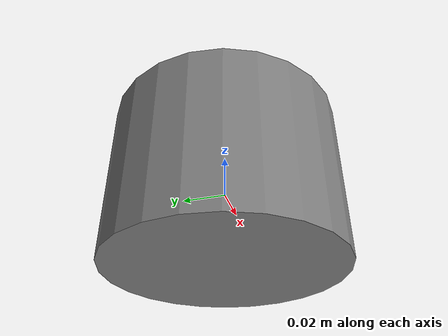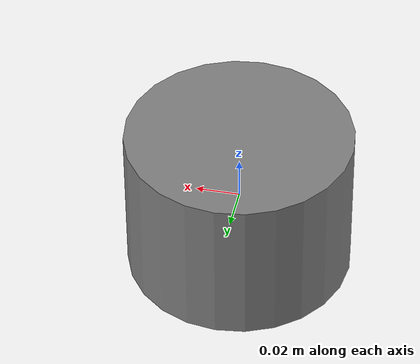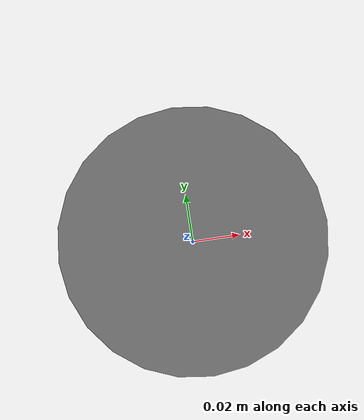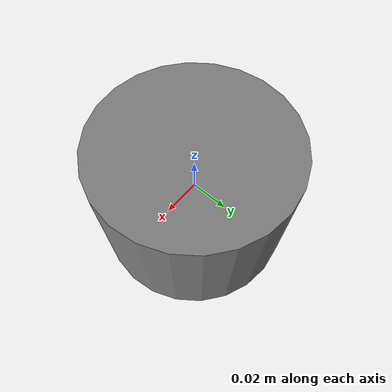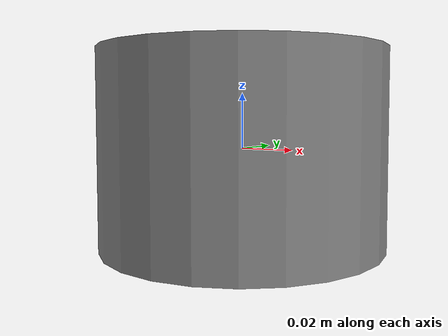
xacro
<?xml version="1.0"?>
<robot name="velodyne_vlp16" xmlns:xacro="http://ros.org/wiki/xacro">
  <link name="base_link"/>

  <joint name="base_to_lidar" type="fixed">
    <parent link="base_link"/>
    <child link="velodyne"/>
  </joint>

  <link name="velodyne">
    <visual>
      <geometry>
         <cylinder radius="0.05165" length="0.0717"/>
      </geometry>
      <material name="gray">
        <color rgba="0.5 0.5 0.5 1.0"/>
      </material>
    </visual>
  </link>
</robot>
